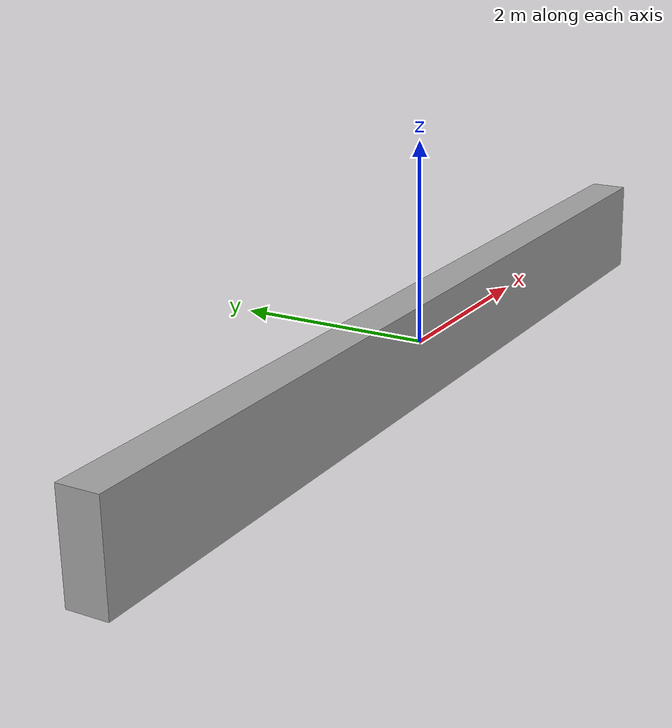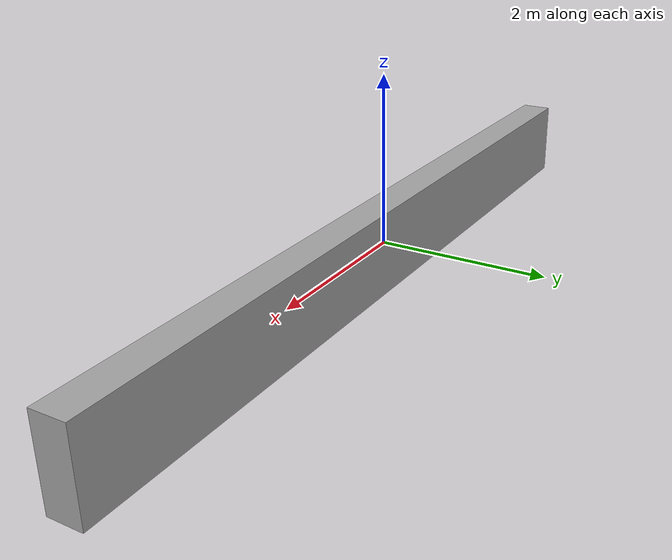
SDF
<?xml version="1.0"?>
<sdf version="1.10">
  <model name="maps">
    <static>true</static>
    <link name="link">
      <collision name="collision">
        <geometry>
          <box>
            <size>10 0.4 1.0</size>
          </box>
        </geometry>
      </collision>
      <visual name="visual">
        <cast_shadows>false</cast_shadows>
        <geometry>
          <box>
            <size>10 0.4 1.0</size>
          </box>
        </geometry>
        <material>
          <ambient>0.55 0.55 0.55 1</ambient>
          <diffuse>0.65 0.65 0.65 1</diffuse>
          <specular>0.05 0.05 0.05 1</specular>
        </material>
      </visual>
    </link>
  </model>
</sdf>
